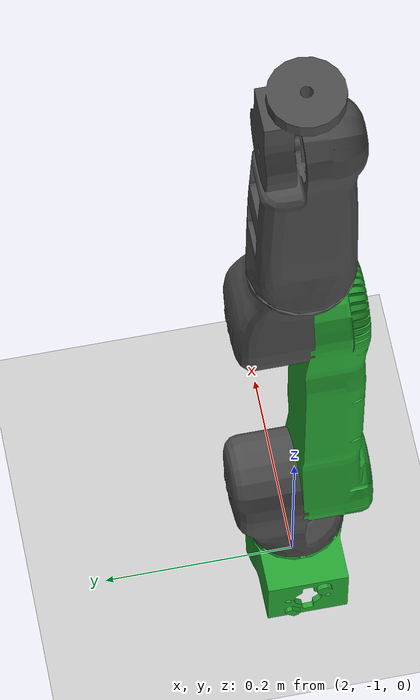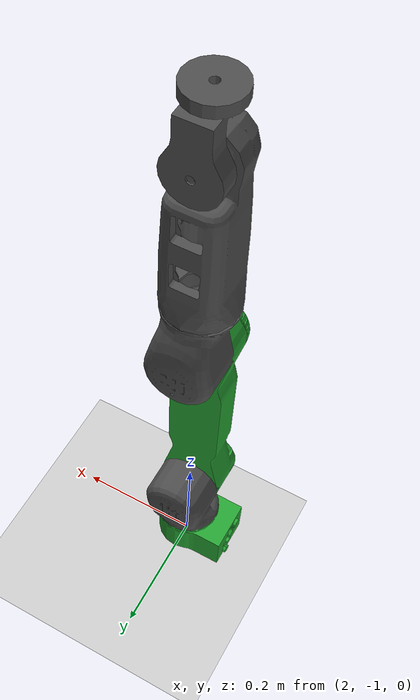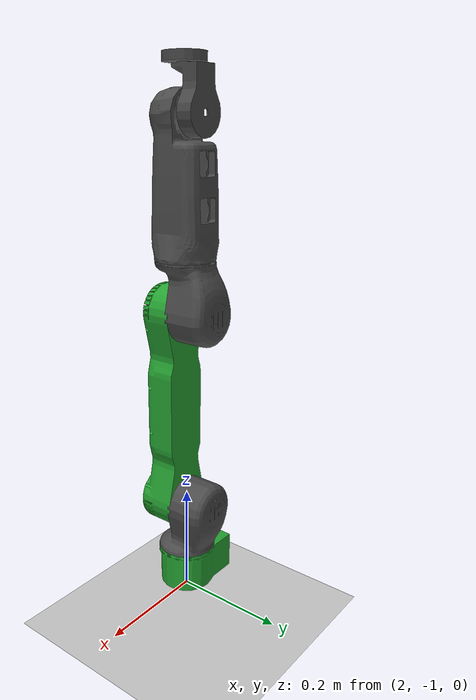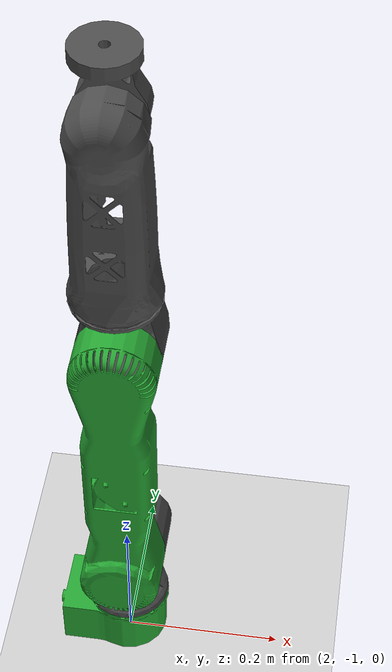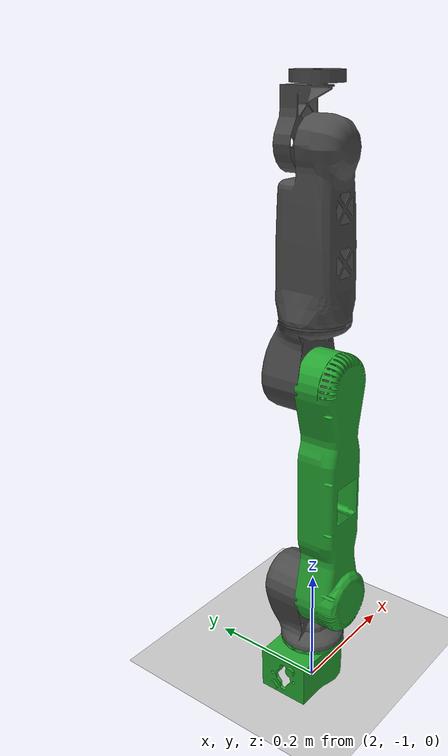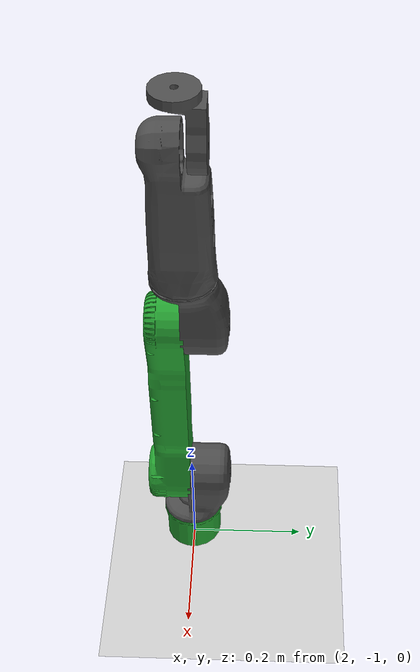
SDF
<sdf version="1.6">
 <world name="default">
  <plugin name="xbot2_gz_clock" filename="libxbot2_gz_clock.so"/>
  <light name="sun" type="directional">
   <pose>0 0 10 0 -0 0</pose>
   <diffuse>0.8 0.8 0.8 1</diffuse>
   <specular>0.2 0.2 0.2 1</specular>
   <attenuation>
    <range>1000</range>
    <constant>0.9</constant>
    <linear>0.01</linear>
    <quadratic>0.001</quadratic>
   </attenuation>
   <direction>-0.5 0.1 -0.9</direction>
  </light>
  <model name="ground_plane">
   <static>1</static>
   <link name="link">
    <collision name="collision">
     <geometry><plane><normal>0 0 1</normal><size>100 100</size></plane></geometry>
     <surface><friction><ode><mu>100</mu><mu2>50</mu2></ode></friction></surface>
    </collision>
    <visual name="visual">
     <cast_shadows>0</cast_shadows>
     <geometry><plane><normal>0 0 1</normal><size>100 100</size></plane></geometry>
     <material>
      <script><uri>file://media/materials/scripts/gazebo.material</uri><name>Gazebo/Grey</name></script>
     </material>
    </visual>
   </link>
  </model>
  <gravity>0 0 -9.8</gravity>
  <magnetic_field>6e-06 2.3e-05 -4.2e-05</magnetic_field>
  <atmosphere type="adiabatic"/>
  <physics name="default_physics" default="0" type="ode">
   <max_step_size>0.001</max_step_size>
   <real_time_factor>1</real_time_factor>
   <real_time_update_rate>1000</real_time_update_rate>
  </physics>
  <scene><ambient>0.4 0.4 0.4 1</ambient><background>0.7 0.7 0.7 1</background><shadows>1</shadows></scene>
  <spherical_coordinates>
   <surface_model>EARTH_WGS84</surface_model>
   <latitude_deg>0</latitude_deg>
   <longitude_deg>0</longitude_deg>
   <elevation>0</elevation>
   <heading_deg>0</heading_deg>
  </spherical_coordinates>
  <model name="teleop">
   <link name="base_link">
    <inertial>
     <mass>1.5</mass>
     <inertia><ixx>0.001</ixx><ixy>0</ixy><ixz>0</ixz><iyy>0.001</iyy><iyz>0</iyz><izz>0.001</izz></inertia>
    </inertial>
    <collision name="base_link_fixed_joint_lump__teleop_link0_collision">
     <pose>0 0 0 1.5708 -0 0</pose>
     <geometry>
      <mesh><scale>0.001 0.001 0.001</scale><uri>model://teleop_urdf/meshes/simple/_teleop_link0.stl</uri></mesh>
     </geometry>
    </collision>
    <visual name="base_link_fixed_joint_lump__teleop_link0_visual">
     <pose>0 0 0 1.5708 -0 0</pose>
     <geometry>
      <mesh><scale>0.001 0.001 0.001</scale><uri>model://teleop_urdf/meshes/_teleop_link0.stl</uri></mesh>
     </geometry>
     <material>
      <script><name>Gazebo/Green</name><uri>file://media/materials/scripts/gazebo.material</uri></script>
     </material>
    </visual>
   </link>
   <joint name="world_joint" type="fixed"><child>base_link</child><parent>world</parent></joint>
   <link name="teleop_link1">
    <inertial>
     <pose>0 -0.02 0.05 0 -0 0</pose>
     <mass>0.3</mass>
     <inertia><ixx>0.001</ixx><ixy>0</ixy><ixz>0</ixz><iyy>0.001</iyy><iyz>0</iyz><izz>0.0008</izz></inertia>
    </inertial>
    <collision name="teleop_link1_collision">
     <pose>0 0 0 1.5708 0 -1.5708</pose>
     <geometry>
      <mesh><scale>0.001 0.001 0.001</scale><uri>model://teleop_urdf/meshes/simple/_teleop_link1.stl</uri></mesh>
     </geometry>
    </collision>
    <visual name="teleop_link1_visual">
     <pose>0 0 0 1.5708 0 -1.5708</pose>
     <geometry>
      <mesh><scale>0.001 0.001 0.001</scale><uri>model://teleop_urdf/meshes/_teleop_link1.stl</uri></mesh>
     </geometry>
     <material>
      <script><name>Gazebo/DarkGrey</name><uri>file://media/materials/scripts/gazebo.material</uri></script>
     </material>
    </visual>
   </link>
   <joint name="joint1" type="revolute">
    <child>teleop_link1</child>
    <parent>base_link</parent>
    <axis>
     <xyz>0 0 1</xyz>
     <limit><lower>-1.75</lower><upper>1.75</upper><effort>55</effort><velocity>11.7</velocity></limit>
     <dynamics>
      <damping>0.03</damping>
      <friction>0</friction>
      <spring_reference>0</spring_reference>
      <spring_stiffness>0</spring_stiffness>
     </dynamics>
     <use_parent_model_frame>1</use_parent_model_frame>
    </axis>
    <physics>
     <provide_feedback>1</provide_feedback>
     <ode>
      <provide_feedback>1</provide_feedback>
      <implicit_spring_damper>1</implicit_spring_damper>
      <cfm_damping>1</cfm_damping>
      <limit><cfm>0</cfm><erp>0.2</erp></limit>
     </ode>
    </physics>
   </joint>
   <link name="teleop_link2">
    <pose>0 0 0.1315 0 -0 0</pose>
    <inertial>
     <pose>0 0.01 0.18 0 -0 0</pose>
     <mass>3.3</mass>
     <inertia><ixx>0.04</ixx><ixy>0</ixy><ixz>0</ixz><iyy>0.04</iyy><iyz>0</iyz><izz>0.01</izz></inertia>
    </inertial>
    <collision name="teleop_link2_collision">
     <pose>0 0 0 1.5708 -0 0</pose>
     <geometry>
      <mesh><scale>0.001 0.001 0.001</scale><uri>model://teleop_urdf/meshes/simple/_teleop_link2.stl</uri></mesh>
     </geometry>
    </collision>
    <visual name="teleop_link2_visual">
     <pose>0 0 0 1.5708 -0 0</pose>
     <geometry>
      <mesh><scale>0.001 0.001 0.001</scale><uri>model://teleop_urdf/meshes/_teleop_link2.stl</uri></mesh>
     </geometry>
     <material>
      <script><name>Gazebo/Green</name><uri>file://media/materials/scripts/gazebo.material</uri></script>
     </material>
    </visual>
   </link>
   <joint name="joint2" type="revolute">
    <child>teleop_link2</child>
    <parent>teleop_link1</parent>
    <axis>
     <xyz>0 1 0</xyz>
     <limit><lower>-2.15</lower><upper>2.15</upper><effort>147</effort><velocity>5.2</velocity></limit>
     <dynamics>
      <damping>0.03</damping>
      <friction>0</friction>
      <spring_reference>0</spring_reference>
      <spring_stiffness>0</spring_stiffness>
     </dynamics>
     <use_parent_model_frame>1</use_parent_model_frame>
    </axis>
    <physics>
     <provide_feedback>1</provide_feedback>
     <ode>
      <provide_feedback>1</provide_feedback>
      <implicit_spring_damper>1</implicit_spring_damper>
      <cfm_damping>1</cfm_damping>
      <limit><cfm>0</cfm><erp>0.2</erp></limit>
     </ode>
    </physics>
   </joint>
   <link name="teleop_link3">
    <pose>0 0 0.4965 0 -0 0</pose>
    <inertial>
     <pose>0 -0.02 0.05 0 -0 0</pose>
     <mass>0.3</mass>
     <inertia><ixx>0.001</ixx><ixy>0</ixy><ixz>0</ixz><iyy>0.001</iyy><iyz>0</iyz><izz>0.0008</izz></inertia>
    </inertial>
    <collision name="teleop_link3_collision">
     <pose>0 0 0 1.5708 -0 0</pose>
     <geometry>
      <mesh><scale>0.001 0.001 0.001</scale><uri>model://teleop_urdf/meshes/simple/_teleop_link3.stl</uri></mesh>
     </geometry>
    </collision>
    <visual name="teleop_link3_visual">
     <pose>0 0 0 1.5708 -0 0</pose>
     <geometry>
      <mesh><scale>0.001 0.001 0.001</scale><uri>model://teleop_urdf/meshes/_teleop_link3.stl</uri></mesh>
     </geometry>
     <material>
      <script><name>Gazebo/DarkGrey</name><uri>file://media/materials/scripts/gazebo.material</uri></script>
     </material>
    </visual>
   </link>
   <joint name="joint3" type="revolute">
    <child>teleop_link3</child>
    <parent>teleop_link2</parent>
    <axis>
     <xyz>0 1 0</xyz>
     <limit><lower>-2.15</lower><upper>2.15</upper><effort>127</effort><velocity>8.1</velocity></limit>
     <dynamics>
      <damping>0.03</damping>
      <friction>0</friction>
      <spring_reference>0</spring_reference>
      <spring_stiffness>0</spring_stiffness>
     </dynamics>
     <use_parent_model_frame>1</use_parent_model_frame>
    </axis>
    <physics>
     <provide_feedback>1</provide_feedback>
     <ode>
      <provide_feedback>1</provide_feedback>
      <implicit_spring_damper>1</implicit_spring_damper>
      <cfm_damping>1</cfm_damping>
      <limit><cfm>0</cfm><erp>0.2</erp></limit>
     </ode>
    </physics>
   </joint>
   <link name="teleop_link4">
    <pose>0 0 0.5965 0 -0 0</pose>
    <inertial>
     <pose>0 0 0.1 0 -0 0</pose>
     <mass>2.5</mass>
     <inertia><ixx>0.015</ixx><ixy>0</ixy><ixz>0</ixz><iyy>0.015</iyy><iyz>0</iyz><izz>0.008</izz></inertia>
    </inertial>
    <collision name="teleop_link4_collision">
     <pose>0 0 0 1.5708 -0 0</pose>
     <geometry>
      <mesh><scale>0.001 0.001 0.001</scale><uri>model://teleop_urdf/meshes/simple/_teleop_link4.stl</uri></mesh>
     </geometry>
    </collision>
    <visual name="teleop_link4_visual">
     <pose>0 0 0 1.5708 -0 0</pose>
     <geometry>
      <mesh><scale>0.001 0.001 0.001</scale><uri>model://teleop_urdf/meshes/_teleop_link4.stl</uri></mesh>
     </geometry>
     <material>
      <script><name>Gazebo/DarkGrey</name><uri>file://media/materials/scripts/gazebo.material</uri></script>
     </material>
    </visual>
   </link>
   <joint name="joint4" type="revolute">
    <child>teleop_link4</child>
    <parent>teleop_link3</parent>
    <axis>
     <xyz>0 0 1</xyz>
     <limit><lower>-2.79</lower><upper>2.79</upper><effort>28</effort><velocity>20.4</velocity></limit>
     <dynamics>
      <damping>0.03</damping>
      <friction>0</friction>
      <spring_reference>0</spring_reference>
      <spring_stiffness>0</spring_stiffness>
     </dynamics>
     <use_parent_model_frame>1</use_parent_model_frame>
    </axis>
    <physics>
     <provide_feedback>1</provide_feedback>
     <ode>
      <provide_feedback>1</provide_feedback>
      <implicit_spring_damper>1</implicit_spring_damper>
      <cfm_damping>1</cfm_damping>
      <limit><cfm>0</cfm><erp>0.2</erp></limit>
     </ode>
    </physics>
   </joint>
   <link name="teleop_link5">
    <pose>0 0 0.8225 0 -0 0</pose>
    <inertial>
     <pose>0 0 0.1 0 -0 0</pose>
     <mass>2</mass>
     <inertia><ixx>0.01</ixx><ixy>0</ixy><ixz>0</ixz><iyy>0.01</iyy><iyz>0</iyz><izz>0.01</izz></inertia>
    </inertial>
    <collision name="teleop_link5_collision">
     <pose>0 0 0 1.5708 -0 -3.14159</pose>
     <geometry>
      <mesh><scale>0.001 0.001 0.001</scale><uri>model://teleop_urdf/meshes/simple/_teleop_link5.stl</uri></mesh>
     </geometry>
    </collision>
    <visual name="teleop_link5_visual">
     <pose>0 0 0 1.5708 -0 -3.14159</pose>
     <geometry>
      <mesh><scale>0.001 0.001 0.001</scale><uri>model://teleop_urdf/meshes/_teleop_link5.stl</uri></mesh>
     </geometry>
     <material>
      <script><name>Gazebo/DarkGrey</name><uri>file://media/materials/scripts/gazebo.material</uri></script>
     </material>
    </visual>
   </link>
   <joint name="joint5" type="revolute">
    <child>teleop_link5</child>
    <parent>teleop_link4</parent>
    <axis>
     <xyz>0 1 0</xyz>
     <limit><lower>-1.83</lower><upper>1.83</upper><effort>28</effort><velocity>20.4</velocity></limit>
     <dynamics>
      <damping>0.03</damping>
      <friction>0</friction>
      <spring_reference>0</spring_reference>
      <spring_stiffness>0</spring_stiffness>
     </dynamics>
     <use_parent_model_frame>1</use_parent_model_frame>
    </axis>
    <physics>
     <provide_feedback>1</provide_feedback>
     <ode>
      <provide_feedback>1</provide_feedback>
      <implicit_spring_damper>1</implicit_spring_damper>
      <cfm_damping>1</cfm_damping>
      <limit><cfm>0</cfm><erp>0.2</erp></limit>
     </ode>
    </physics>
   </joint>
   <static>0</static>
   <plugin name="xbot2_gz_joint_server" filename="libxbot2_gz_joint_server.so">
    <pid>
     <gain name="small_mot" p="250" d="5"/>
     <gain name="medium_mot" p="1000" d="10"/>
     <gain name="joint1" profile="medium_mot"/>
     <gain name="joint2" profile="medium_mot"/>
     <gain name="joint3" profile="medium_mot"/>
     <gain name="joint4" profile="small_mot"/>
     <gain name="joint5" profile="small_mot"/>
    </pid>
   </plugin>
   <plugin name="xbot2_gz_rocket_server" filename="libxbot2_gz_rocket_server.so">
    <link_name>teleop_link5</link_name>
   </plugin>
   <pose>2 -1 0.05 1.2e-05 -0 0</pose>
  </model>
 </world>
</sdf>
